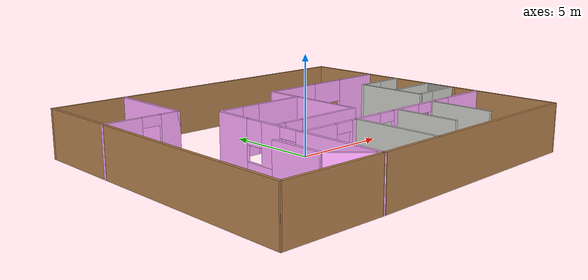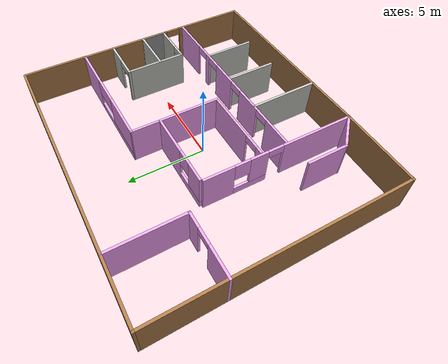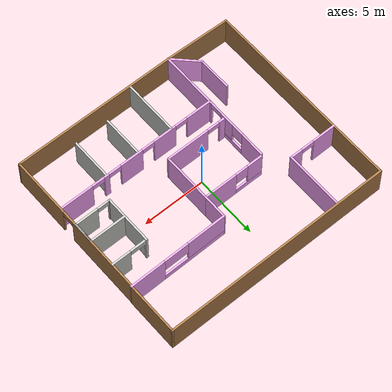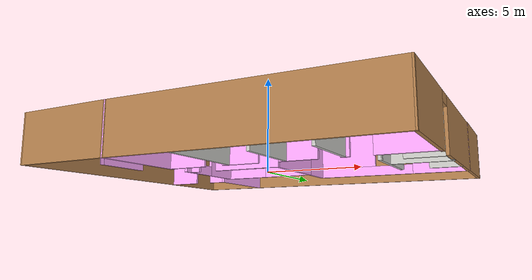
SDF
<?xml version='1.0'?>
<sdf version='1.6'>
  <model name='Building'>
    <pose frame=''>0.291404 0.084214 0 0 -0 0</pose>
    <link name='Wall_0'>
      <pose frame=''>-3.89491 -3.07088 0 0 0 -1.57824</pose>
      <visual name='Wall_0_Visual_0'>
        <pose frame=''>-3.9947 0 1.25 0 -0 0</pose>
        <geometry>
          <box>
            <size>1.99092 0.15 2.5</size>
          </box>
        </geometry>
        <material>
          <script>
            <uri>file://media/materials/scripts/gazebo.material</uri>
            <name>Gazebo/Grey</name>
          </script>
          <ambient>1 0.666667 1 1</ambient>
        </material>
        <meta>
          <layer>0</layer>
        </meta>
      </visual>
      <collision name='Wall_0_Collision_0'>
        <geometry>
          <box>
            <size>1.99092 0.15 2.5</size>
          </box>
        </geometry>
        <pose frame=''>-3.9947 0 1.25 0 -0 0</pose>
      </collision>
      <visual name='Wall_0_Visual_1'>
        <pose frame=''>2.58886 0 1.25 0 -0 0</pose>
        <geometry>
          <box>
            <size>4.80261 0.15 2.5</size>
          </box>
        </geometry>
        <material>
          <script>
            <uri>file://media/materials/scripts/gazebo.material</uri>
            <name>Gazebo/Grey</name>
          </script>
          <ambient>1 0.666667 1 1</ambient>
        </material>
        <meta>
          <layer>0</layer>
        </meta>
      </visual>
      <collision name='Wall_0_Collision_1'>
        <geometry>
          <box>
            <size>4.80261 0.15 2.5</size>
          </box>
        </geometry>
        <pose frame=''>2.58886 0 1.25 0 -0 0</pose>
      </collision>
      <visual name='Wall_0_Visual_2'>
        <pose frame=''>-1.90584 0 0.25 0 -0 0</pose>
        <geometry>
          <box>
            <size>2.18679 0.15 0.5</size>
          </box>
        </geometry>
        <material>
          <script>
            <uri>file://media/materials/scripts/gazebo.material</uri>
            <name>Gazebo/Grey</name>
          </script>
          <ambient>1 0.666667 1 1</ambient>
        </material>
        <meta>
          <layer>0</layer>
        </meta>
      </visual>
      <collision name='Wall_0_Collision_2'>
        <geometry>
          <box>
            <size>2.18679 0.15 0.5</size>
          </box>
        </geometry>
        <pose frame=''>-1.90584 0 0.25 0 -0 0</pose>
      </collision>
      <visual name='Wall_0_Visual_3'>
        <pose frame=''>-1.40584 0 1.5 0 -0 0</pose>
        <geometry>
          <box>
            <size>1.18679 0.15 2</size>
          </box>
        </geometry>
        <material>
          <script>
            <uri>file://media/materials/scripts/gazebo.material</uri>
            <name>Gazebo/Grey</name>
          </script>
          <ambient>1 0.666667 1 1</ambient>
        </material>
        <meta>
          <layer>0</layer>
        </meta>
      </visual>
      <collision name='Wall_0_Collision_3'>
        <geometry>
          <box>
            <size>1.18679 0.15 2</size>
          </box>
        </geometry>
        <pose frame=''>-1.40584 0 1.5 0 -0 0</pose>
      </collision>
      <visual name='Wall_0_Visual_4'>
        <pose frame=''>-2.49924 0 1.9 0 -0 0</pose>
        <geometry>
          <box>
            <size>1 0.15 1.2</size>
          </box>
        </geometry>
        <material>
          <script>
            <uri>file://media/materials/scripts/gazebo.material</uri>
            <name>Gazebo/Grey</name>
          </script>
          <ambient>1 0.666667 1 1</ambient>
        </material>
        <meta>
          <layer>0</layer>
        </meta>
      </visual>
      <collision name='Wall_0_Collision_4'>
        <geometry>
          <box>
            <size>1 0.15 1.2</size>
          </box>
        </geometry>
        <pose frame=''>-2.49924 0 1.9 0 -0 0</pose>
      </collision>
      <visual name='Wall_0_Visual_5'>
        <pose frame=''>-0.312448 0 2.25 0 -0 0</pose>
        <geometry>
          <box>
            <size>1 0.15 0.5</size>
          </box>
        </geometry>
        <material>
          <script>
            <uri>file://media/materials/scripts/gazebo.material</uri>
            <name>Gazebo/Grey</name>
          </script>
          <ambient>1 0.666667 1 1</ambient>
        </material>
        <meta>
          <layer>0</layer>
        </meta>
      </visual>
      <collision name='Wall_0_Collision_5'>
        <geometry>
          <box>
            <size>1 0.15 0.5</size>
          </box>
        </geometry>
        <pose frame=''>-0.312448 0 2.25 0 -0 0</pose>
      </collision>
    </link>
    <link name='Wall_1'>
      <collision name='Wall_1_Collision'>
        <geometry>
          <box>
            <size>13.0918 0.15 2.5</size>
          </box>
        </geometry>
        <pose frame=''>0 0 1.25 0 -0 0</pose>
      </collision>
      <visual name='Wall_1_Visual'>
        <pose frame=''>0 0 1.25 0 -0 0</pose>
        <geometry>
          <box>
            <size>13.0918 0.15 2.5</size>
          </box>
        </geometry>
        <material>
          <script>
            <uri>file://media/materials/scripts/gazebo.material</uri>
            <name>Gazebo/Wood</name>
          </script>
          <ambient>1 1 1 1</ambient>
        </material>
        <meta>
          <layer>0</layer>
        </meta>
      </visual>
      <pose frame=''>2.5394 -7.9859 0 0 -0 0</pose>
    </link>
    <link name='Wall_10'>
      <pose frame=''>2.57243 -3.52127 0 0 -0 0</pose>
      <visual name='Wall_10_Visual_0'>
        <pose frame=''>-5.45325 0 1.25 0 -0 0</pose>
        <geometry>
          <box>
            <size>2.0935 0.15 2.5</size>
          </box>
        </geometry>
        <material>
          <script>
            <uri>file://media/materials/scripts/gazebo.material</uri>
            <name>Gazebo/Grey</name>
          </script>
          <ambient>1 0.666667 1 1</ambient>
        </material>
        <meta>
          <layer>0</layer>
        </meta>
      </visual>
      <collision name='Wall_10_Collision_0'>
        <geometry>
          <box>
            <size>2.0935 0.15 2.5</size>
          </box>
        </geometry>
        <pose frame=''>-5.45325 0 1.25 0 -0 0</pose>
      </collision>
      <visual name='Wall_10_Visual_1'>
        <pose frame=''>-2.45836 0 1.25 0 -0 0</pose>
        <geometry>
          <box>
            <size>1.89627 0.15 2.5</size>
          </box>
        </geometry>
        <material>
          <script>
            <uri>file://media/materials/scripts/gazebo.material</uri>
            <name>Gazebo/Grey</name>
          </script>
          <ambient>1 0.666667 1 1</ambient>
        </material>
        <meta>
          <layer>0</layer>
        </meta>
      </visual>
      <collision name='Wall_10_Collision_1'>
        <geometry>
          <box>
            <size>1.89627 0.15 2.5</size>
          </box>
        </geometry>
        <pose frame=''>-2.45836 0 1.25 0 -0 0</pose>
      </collision>
      <visual name='Wall_10_Visual_2'>
        <pose frame=''>0.424691 0 1.25 0 -0 0</pose>
        <geometry>
          <box>
            <size>1.86983 0.15 2.5</size>
          </box>
        </geometry>
        <material>
          <script>
            <uri>file://media/materials/scripts/gazebo.material</uri>
            <name>Gazebo/Grey</name>
          </script>
          <ambient>1 0.666667 1 1</ambient>
        </material>
        <meta>
          <layer>0</layer>
        </meta>
      </visual>
      <collision name='Wall_10_Collision_2'>
        <geometry>
          <box>
            <size>1.86983 0.15 2.5</size>
          </box>
        </geometry>
        <pose frame=''>0.424691 0 1.25 0 -0 0</pose>
      </collision>
      <visual name='Wall_10_Visual_3'>
        <pose frame=''>2.56714 0 1.25 0 -0 0</pose>
        <geometry>
          <box>
            <size>0.415075 0.15 2.5</size>
          </box>
        </geometry>
        <material>
          <script>
            <uri>file://media/materials/scripts/gazebo.material</uri>
            <name>Gazebo/Grey</name>
          </script>
          <ambient>1 0.666667 1 1</ambient>
        </material>
        <meta>
          <layer>0</layer>
        </meta>
      </visual>
      <collision name='Wall_10_Collision_3'>
        <geometry>
          <box>
            <size>0.415075 0.15 2.5</size>
          </box>
        </geometry>
        <pose frame=''>2.56714 0 1.25 0 -0 0</pose>
      </collision>
      <visual name='Wall_10_Visual_4'>
        <pose frame=''>5.13734 0 1.25 0 -0 0</pose>
        <geometry>
          <box>
            <size>2.72532 0.15 2.5</size>
          </box>
        </geometry>
        <material>
          <script>
            <uri>file://media/materials/scripts/gazebo.material</uri>
            <name>Gazebo/Grey</name>
          </script>
          <ambient>1 0.666667 1 1</ambient>
        </material>
        <meta>
          <layer>0</layer>
        </meta>
      </visual>
      <collision name='Wall_10_Collision_4'>
        <geometry>
          <box>
            <size>2.72532 0.15 2.5</size>
          </box>
        </geometry>
        <pose frame=''>5.13734 0 1.25 0 -0 0</pose>
      </collision>
      <visual name='Wall_10_Visual_5'>
        <pose frame=''>-3.9065 0 2.25 0 -0 0</pose>
        <geometry>
          <box>
            <size>1 0.15 0.5</size>
          </box>
        </geometry>
        <material>
          <script>
            <uri>file://media/materials/scripts/gazebo.material</uri>
            <name>Gazebo/Grey</name>
          </script>
          <ambient>1 0.666667 1 1</ambient>
        </material>
        <meta>
          <layer>0</layer>
        </meta>
      </visual>
      <collision name='Wall_10_Collision_5'>
        <geometry>
          <box>
            <size>1 0.15 0.5</size>
          </box>
        </geometry>
        <pose frame=''>-3.9065 0 2.25 0 -0 0</pose>
      </collision>
      <visual name='Wall_10_Visual_6'>
        <pose frame=''>-1.01022 0 2.25 0 -0 0</pose>
        <geometry>
          <box>
            <size>1 0.15 0.5</size>
          </box>
        </geometry>
        <material>
          <script>
            <uri>file://media/materials/scripts/gazebo.material</uri>
            <name>Gazebo/Grey</name>
          </script>
          <ambient>1 0.666667 1 1</ambient>
        </material>
        <meta>
          <layer>0</layer>
        </meta>
      </visual>
      <collision name='Wall_10_Collision_6'>
        <geometry>
          <box>
            <size>1 0.15 0.5</size>
          </box>
        </geometry>
        <pose frame=''>-1.01022 0 2.25 0 -0 0</pose>
      </collision>
      <visual name='Wall_10_Visual_7'>
        <pose frame=''>1.8596 0 2.25 0 -0 0</pose>
        <geometry>
          <box>
            <size>1 0.15 0.5</size>
          </box>
        </geometry>
        <material>
          <script>
            <uri>file://media/materials/scripts/gazebo.material</uri>
            <name>Gazebo/Grey</name>
          </script>
          <ambient>1 0.666667 1 1</ambient>
        </material>
        <meta>
          <layer>0</layer>
        </meta>
      </visual>
      <collision name='Wall_10_Collision_7'>
        <geometry>
          <box>
            <size>1 0.15 0.5</size>
          </box>
        </geometry>
        <pose frame=''>1.8596 0 2.25 0 -0 0</pose>
      </collision>
      <visual name='Wall_10_Visual_8'>
        <pose frame=''>3.27468 0 2.25 0 -0 0</pose>
        <geometry>
          <box>
            <size>1 0.15 0.5</size>
          </box>
        </geometry>
        <material>
          <script>
            <uri>file://media/materials/scripts/gazebo.material</uri>
            <name>Gazebo/Grey</name>
          </script>
          <ambient>1 0.666667 1 1</ambient>
        </material>
        <meta>
          <layer>0</layer>
        </meta>
      </visual>
      <collision name='Wall_10_Collision_8'>
        <geometry>
          <box>
            <size>1 0.15 0.5</size>
          </box>
        </geometry>
        <pose frame=''>3.27468 0 2.25 0 -0 0</pose>
      </collision>
    </link>
    <link name='Wall_12'>
      <pose frame=''>7.56891 1.8886 0 0 -0 3.14159</pose>
      <visual name='Wall_12_Visual_0'>
        <pose frame=''>-0.720538 0 1.25 0 -0 0</pose>
        <geometry>
          <box>
            <size>1.55892 0.15 2.5</size>
          </box>
        </geometry>
        <material>
          <script>
            <uri>file://media/materials/scripts/gazebo.material</uri>
            <name>Gazebo/CeilingTiled</name>
          </script>
          <ambient>0.666667 0.666667 1 1</ambient>
        </material>
        <meta>
          <layer>0</layer>
        </meta>
      </visual>
      <collision name='Wall_12_Collision_0'>
        <geometry>
          <box>
            <size>1.55892 0.15 2.5</size>
          </box>
        </geometry>
        <pose frame=''>-0.720538 0 1.25 0 -0 0</pose>
      </collision>
      <visual name='Wall_12_Visual_1'>
        <pose frame=''>1.40446 0 1.25 0 -0 0</pose>
        <geometry>
          <box>
            <size>0.191076 0.15 2.5</size>
          </box>
        </geometry>
        <material>
          <script>
            <uri>file://media/materials/scripts/gazebo.material</uri>
            <name>Gazebo/CeilingTiled</name>
          </script>
          <ambient>0.666667 0.666667 1 1</ambient>
        </material>
        <meta>
          <layer>0</layer>
        </meta>
      </visual>
      <collision name='Wall_12_Collision_1'>
        <geometry>
          <box>
            <size>0.191076 0.15 2.5</size>
          </box>
        </geometry>
        <pose frame=''>1.40446 0 1.25 0 -0 0</pose>
      </collision>
      <visual name='Wall_12_Visual_2'>
        <pose frame=''>0.683924 0 2.25 0 -0 0</pose>
        <geometry>
          <box>
            <size>1.25 0.15 0.5</size>
          </box>
        </geometry>
        <material>
          <script>
            <uri>file://media/materials/scripts/gazebo.material</uri>
            <name>Gazebo/CeilingTiled</name>
          </script>
          <ambient>0.666667 0.666667 1 1</ambient>
        </material>
        <meta>
          <layer>0</layer>
        </meta>
      </visual>
      <collision name='Wall_12_Collision_2'>
        <geometry>
          <box>
            <size>1.25 0.15 0.5</size>
          </box>
        </geometry>
        <pose frame=''>0.683924 0 2.25 0 -0 0</pose>
      </collision>
    </link>
    <link name='Wall_15'>
      <collision name='Wall_15_Collision'>
        <geometry>
          <box>
            <size>4 0.15 2.5</size>
          </box>
        </geometry>
        <pose frame=''>0 0 1.25 0 -0 0</pose>
      </collision>
      <visual name='Wall_15_Visual'>
        <pose frame=''>0 0 1.25 0 -0 0</pose>
        <geometry>
          <box>
            <size>4 0.15 2.5</size>
          </box>
        </geometry>
        <material>
          <script>
            <uri>file://media/materials/scripts/gazebo.material</uri>
            <name>Gazebo/CeilingTiled</name>
          </script>
          <ambient>0.666667 0.666667 1 1</ambient>
        </material>
        <meta>
          <layer>0</layer>
        </meta>
      </visual>
      <pose frame=''>6.14391 -0.036403 0 0 0 -1.5708</pose>
    </link>
    <link name='Wall_16'>
      <pose frame=''>7.56891 -1.9614 0 0 -0 0</pose>
      <visual name='Wall_16_Visual_0'>
        <pose frame=''>-1.40292 0 1.25 0 -0 0</pose>
        <geometry>
          <box>
            <size>0.194152 0.15 2.5</size>
          </box>
        </geometry>
        <material>
          <script>
            <uri>file://media/materials/scripts/gazebo.material</uri>
            <name>Gazebo/CeilingTiled</name>
          </script>
          <ambient>0.666667 0.666667 1 1</ambient>
        </material>
        <meta>
          <layer>0</layer>
        </meta>
      </visual>
      <collision name='Wall_16_Collision_0'>
        <geometry>
          <box>
            <size>0.194152 0.15 2.5</size>
          </box>
        </geometry>
        <pose frame=''>-1.40292 0 1.25 0 -0 0</pose>
      </collision>
      <visual name='Wall_16_Visual_1'>
        <pose frame=''>0.547076 0 1.25 0 -0 0</pose>
        <geometry>
          <box>
            <size>1.90585 0.15 2.5</size>
          </box>
        </geometry>
        <material>
          <script>
            <uri>file://media/materials/scripts/gazebo.material</uri>
            <name>Gazebo/CeilingTiled</name>
          </script>
          <ambient>0.666667 0.666667 1 1</ambient>
        </material>
        <meta>
          <layer>0</layer>
        </meta>
      </visual>
      <collision name='Wall_16_Collision_1'>
        <geometry>
          <box>
            <size>1.90585 0.15 2.5</size>
          </box>
        </geometry>
        <pose frame=''>0.547076 0 1.25 0 -0 0</pose>
      </collision>
      <visual name='Wall_16_Visual_2'>
        <pose frame=''>-0.855848 0 2.25 0 -0 0</pose>
        <geometry>
          <box>
            <size>0.9 0.15 0.5</size>
          </box>
        </geometry>
        <material>
          <script>
            <uri>file://media/materials/scripts/gazebo.material</uri>
            <name>Gazebo/CeilingTiled</name>
          </script>
          <ambient>0.666667 0.666667 1 1</ambient>
        </material>
        <meta>
          <layer>0</layer>
        </meta>
      </visual>
      <collision name='Wall_16_Collision_2'>
        <geometry>
          <box>
            <size>0.9 0.15 0.5</size>
          </box>
        </geometry>
        <pose frame=''>-0.855848 0 2.25 0 -0 0</pose>
      </collision>
    </link>
    <link name='Wall_17'>
      <collision name='Wall_17_Collision'>
        <geometry>
          <box>
            <size>1.75 0.15 2.5</size>
          </box>
        </geometry>
        <pose frame=''>0 0 1.25 0 -0 0</pose>
      </collision>
      <visual name='Wall_17_Visual'>
        <pose frame=''>0 0 1.25 0 -0 0</pose>
        <geometry>
          <box>
            <size>1.75 0.15 2.5</size>
          </box>
        </geometry>
        <material>
          <script>
            <uri>file://media/materials/scripts/gazebo.material</uri>
            <name>Gazebo/Grey</name>
          </script>
          <ambient>1 1 1 1</ambient>
        </material>
        <meta>
          <layer>0</layer>
        </meta>
      </visual>
      <pose frame=''>8.99391 -1.1614 0 0 -0 1.5708</pose>
    </link>
    <link name='Wall_18'>
      <collision name='Wall_18_Collision'>
        <geometry>
          <box>
            <size>3 0.15 2.5</size>
          </box>
        </geometry>
        <pose frame=''>0 0 1.25 0 -0 0</pose>
      </collision>
      <visual name='Wall_18_Visual'>
        <pose frame=''>0 0 1.25 0 -0 0</pose>
        <geometry>
          <box>
            <size>3 0.15 2.5</size>
          </box>
        </geometry>
        <material>
          <script>
            <uri>file://media/materials/scripts/gazebo.material</uri>
            <name>Gazebo/CeilingTiled</name>
          </script>
          <ambient>0.666667 0.666667 1 1</ambient>
        </material>
        <meta>
          <layer>0</layer>
        </meta>
      </visual>
      <pose frame=''>7.56891 -0.361403 0 0 -0 3.14159</pose>
    </link>
    <link name='Wall_2'>
      <pose frame=''>9.01627 -2.06506 0 0 -0 1.56978</pose>
      <visual name='Wall_2_Visual_0'>
        <pose frame=''>-3.568 0 1.25 0 -0 0</pose>
        <geometry>
          <box>
            <size>4.85569 0.15 2.5</size>
          </box>
        </geometry>
        <material>
          <script>
            <uri>file://media/materials/scripts/gazebo.material</uri>
            <name>Gazebo/Wood</name>
          </script>
          <ambient>1 1 1 1</ambient>
        </material>
        <meta>
          <layer>0</layer>
        </meta>
      </visual>
      <collision name='Wall_2_Collision_0'>
        <geometry>
          <box>
            <size>4.85569 0.15 2.5</size>
          </box>
        </geometry>
        <pose frame=''>-3.568 0 1.25 0 -0 0</pose>
      </collision>
      <visual name='Wall_2_Visual_1'>
        <pose frame=''>2.92785 0 1.25 0 -0 0</pose>
        <geometry>
          <box>
            <size>6.136 0.15 2.5</size>
          </box>
        </geometry>
        <material>
          <script>
            <uri>file://media/materials/scripts/gazebo.material</uri>
            <name>Gazebo/Wood</name>
          </script>
          <ambient>1 1 1 1</ambient>
        </material>
        <meta>
          <layer>0</layer>
        </meta>
      </visual>
      <collision name='Wall_2_Collision_1'>
        <geometry>
          <box>
            <size>6.136 0.15 2.5</size>
          </box>
        </geometry>
        <pose frame=''>2.92785 0 1.25 0 -0 0</pose>
      </collision>
      <visual name='Wall_2_Visual_2'>
        <pose frame=''>-0.640156 0 2.25 0 -0 0</pose>
        <geometry>
          <box>
            <size>1 0.15 0.5</size>
          </box>
        </geometry>
        <material>
          <script>
            <uri>file://media/materials/scripts/gazebo.material</uri>
            <name>Gazebo/Wood</name>
          </script>
          <ambient>1 1 1 1</ambient>
        </material>
        <meta>
          <layer>0</layer>
        </meta>
      </visual>
      <collision name='Wall_2_Collision_2'>
        <geometry>
          <box>
            <size>1 0.15 0.5</size>
          </box>
        </geometry>
        <pose frame=''>-0.640156 0 2.25 0 -0 0</pose>
      </collision>
    </link>
    <link name='Wall_21'>
      <collision name='Wall_21_Collision'>
        <geometry>
          <box>
            <size>4.5 0.15 2.5</size>
          </box>
        </geometry>
        <pose frame=''>0 0 1.25 0 -0 0</pose>
      </collision>
      <visual name='Wall_21_Visual'>
        <pose frame=''>0 0 1.25 0 -0 0</pose>
        <geometry>
          <box>
            <size>4.5 0.15 2.5</size>
          </box>
        </geometry>
        <material>
          <script>
            <uri>file://media/materials/scripts/gazebo.material</uri>
            <name>Gazebo/CeilingTiled</name>
          </script>
          <ambient>1 0.666667 1 1</ambient>
        </material>
        <meta>
          <layer>0</layer>
        </meta>
      </visual>
      <pose frame=''>-0.507784 -5.74646 0 0 0 -1.5708</pose>
    </link>
    <link name='Wall_23'>
      <collision name='Wall_23_Collision'>
        <geometry>
          <box>
            <size>3.25 0.15 2.5</size>
          </box>
        </geometry>
        <pose frame=''>0 0 1.25 0 -0 0</pose>
      </collision>
      <visual name='Wall_23_Visual'>
        <pose frame=''>0 0 1.25 0 -0 0</pose>
        <geometry>
          <box>
            <size>3.25 0.15 2.5</size>
          </box>
        </geometry>
        <material>
          <script>
            <uri>file://media/materials/scripts/gazebo.material</uri>
            <name>Gazebo/CeilingTiled</name>
          </script>
          <ambient>1 0.666667 1 1</ambient>
        </material>
        <meta>
          <layer>0</layer>
        </meta>
      </visual>
      <pose frame=''>2.39271 -5.21989 0 0 0 -1.5708</pose>
    </link>
    <link name='Wall_25'>
      <collision name='Wall_25_Collision'>
        <geometry>
          <box>
            <size>3.25 0.15 2.5</size>
          </box>
        </geometry>
        <pose frame=''>0 0 1.25 0 -0 0</pose>
      </collision>
      <visual name='Wall_25_Visual'>
        <pose frame=''>0 0 1.25 0 -0 0</pose>
        <geometry>
          <box>
            <size>3.25 0.15 2.5</size>
          </box>
        </geometry>
        <material>
          <script>
            <uri>file://media/materials/scripts/gazebo.material</uri>
            <name>Gazebo/CeilingTiled</name>
          </script>
          <ambient>1 0.666667 1 1</ambient>
        </material>
        <meta>
          <layer>0</layer>
        </meta>
      </visual>
      <pose frame=''>5.11344 -5.21592 0 0 0 -1.5708</pose>
    </link>
    <link name='Wall_27'>
      <collision name='Wall_27_Collision'>
        <geometry>
          <box>
            <size>4.25 0.15 2.5</size>
          </box>
        </geometry>
        <pose frame=''>0 0 1.25 0 -0 0</pose>
      </collision>
      <visual name='Wall_27_Visual'>
        <pose frame=''>0 0 1.25 0 -0 0</pose>
        <geometry>
          <box>
            <size>4.25 0.15 2.5</size>
          </box>
        </geometry>
        <material>
          <script>
            <uri>file://media/materials/scripts/gazebo.material</uri>
            <name>Gazebo/Wood</name>
          </script>
          <ambient>1 1 1 1</ambient>
        </material>
        <meta>
          <layer>0</layer>
        </meta>
      </visual>
      <pose frame=''>9.05284 5.96697 0 0 -0 1.5708</pose>
    </link>
    <link name='Wall_28'>
      <collision name='Wall_28_Collision'>
        <geometry>
          <box>
            <size>18.25 0.15 2.5</size>
          </box>
        </geometry>
        <pose frame=''>0 0 1.25 0 -0 0</pose>
      </collision>
      <visual name='Wall_28_Visual'>
        <pose frame=''>0 0 1.25 0 -0 0</pose>
        <geometry>
          <box>
            <size>18.25 0.15 2.5</size>
          </box>
        </geometry>
        <material>
          <script>
            <uri>file://media/materials/scripts/gazebo.material</uri>
            <name>Gazebo/Wood</name>
          </script>
          <ambient>1 1 1 1</ambient>
        </material>
        <meta>
          <layer>0</layer>
        </meta>
      </visual>
      <pose frame=''>0.002842 8.01697 0 0 -0 3.14159</pose>
    </link>
    <link name='Wall_3'>
      <pose frame=''>5.09725 3.88056 0 0 0 -3.13239</pose>
      <visual name='Wall_3_Visual_0'>
        <pose frame=''>-2.60316 0 1.25 0 -0 0</pose>
        <geometry>
          <box>
            <size>2.85486 0.15 2.5</size>
          </box>
        </geometry>
        <material>
          <script>
            <uri>file://media/materials/scripts/gazebo.material</uri>
            <name>Gazebo/Grey</name>
          </script>
          <ambient>1 0.666667 1 1</ambient>
        </material>
        <meta>
          <layer>0</layer>
        </meta>
      </visual>
      <collision name='Wall_3_Collision_0'>
        <geometry>
          <box>
            <size>2.85486 0.15 2.5</size>
          </box>
        </geometry>
        <pose frame=''>-2.60316 0 1.25 0 -0 0</pose>
      </collision>
      <visual name='Wall_3_Visual_1'>
        <pose frame=''>1.42743 0 0.25 0 -0 0</pose>
        <geometry>
          <box>
            <size>5.20633 0.15 0.5</size>
          </box>
        </geometry>
        <material>
          <script>
            <uri>file://media/materials/scripts/gazebo.material</uri>
            <name>Gazebo/Grey</name>
          </script>
          <ambient>1 0.666667 1 1</ambient>
        </material>
        <meta>
          <layer>0</layer>
        </meta>
      </visual>
      <collision name='Wall_3_Collision_1'>
        <geometry>
          <box>
            <size>5.20633 0.15 0.5</size>
          </box>
        </geometry>
        <pose frame=''>1.42743 0 0.25 0 -0 0</pose>
      </collision>
      <visual name='Wall_3_Visual_2'>
        <pose frame=''>2.42743 0 1.5 0 -0 0</pose>
        <geometry>
          <box>
            <size>3.20633 0.15 2</size>
          </box>
        </geometry>
        <material>
          <script>
            <uri>file://media/materials/scripts/gazebo.material</uri>
            <name>Gazebo/Grey</name>
          </script>
          <ambient>1 0.666667 1 1</ambient>
        </material>
        <meta>
          <layer>0</layer>
        </meta>
      </visual>
      <collision name='Wall_3_Collision_2'>
        <geometry>
          <box>
            <size>3.20633 0.15 2</size>
          </box>
        </geometry>
        <pose frame=''>2.42743 0 1.5 0 -0 0</pose>
      </collision>
      <visual name='Wall_3_Visual_3'>
        <pose frame=''>-0.175731 0 1.9 0 -0 0</pose>
        <geometry>
          <box>
            <size>2 0.15 1.2</size>
          </box>
        </geometry>
        <material>
          <script>
            <uri>file://media/materials/scripts/gazebo.material</uri>
            <name>Gazebo/Grey</name>
          </script>
          <ambient>1 0.666667 1 1</ambient>
        </material>
        <meta>
          <layer>0</layer>
        </meta>
      </visual>
      <collision name='Wall_3_Collision_3'>
        <geometry>
          <box>
            <size>2 0.15 1.2</size>
          </box>
        </geometry>
        <pose frame=''>-0.175731 0 1.9 0 -0 0</pose>
      </collision>
    </link>
    <link name='Wall_32'>
      <collision name='Wall_32_Collision'>
        <geometry>
          <box>
            <size>16 0.15 2.5</size>
          </box>
        </geometry>
        <pose frame=''>0 0 1.25 0 -0 0</pose>
      </collision>
      <visual name='Wall_32_Visual'>
        <pose frame=''>0 0 1.25 0 -0 0</pose>
        <geometry>
          <box>
            <size>16 0.15 2.5</size>
          </box>
        </geometry>
        <material>
          <script>
            <uri>file://media/materials/scripts/gazebo.material</uri>
            <name>Gazebo/Wood</name>
          </script>
          <ambient>1 1 1 1</ambient>
        </material>
        <meta>
          <layer>0</layer>
        </meta>
      </visual>
      <pose frame=''>-9.04716 0.091965 0 0 0 -1.5708</pose>
    </link>
    <link name='Wall_33'>
      <collision name='Wall_33_Collision'>
        <geometry>
          <box>
            <size>5.26795 0.15 2.5</size>
          </box>
        </geometry>
        <pose frame=''>0 0 1.25 0 -0 0</pose>
      </collision>
      <visual name='Wall_33_Visual'>
        <pose frame=''>0 0 1.25 0 -0 0</pose>
        <geometry>
          <box>
            <size>5.26795 0.15 2.5</size>
          </box>
        </geometry>
        <material>
          <script>
            <uri>file://media/materials/scripts/gazebo.material</uri>
            <name>Gazebo/Wood</name>
          </script>
          <ambient>1 1 1 1</ambient>
        </material>
        <meta>
          <layer>0</layer>
        </meta>
      </visual>
      <pose frame=''>-6.48932 -7.90947 0 0 0 -0.029873</pose>
    </link>
    <link name='Wall_34'>
      <collision name='Wall_34_Collision'>
        <geometry>
          <box>
            <size>2.5 0.15 2.5</size>
          </box>
        </geometry>
        <pose frame=''>0 0 1.25 0 -0 0</pose>
      </collision>
      <visual name='Wall_34_Visual'>
        <pose frame=''>0 0 1.25 0 -0 0</pose>
        <geometry>
          <box>
            <size>2.5 0.15 2.5</size>
          </box>
        </geometry>
        <material>
          <script>
            <uri>file://media/materials/scripts/gazebo.material</uri>
            <name>Gazebo/Grey</name>
          </script>
          <ambient>1 0.666667 1 1</ambient>
        </material>
        <meta>
          <layer>0</layer>
        </meta>
      </visual>
      <pose frame=''>-4.76234 -7.15505 0 0 -0 2.35619</pose>
    </link>
    <link name='Wall_35'>
      <collision name='Wall_35_Collision'>
        <geometry>
          <box>
            <size>2.75 0.15 2.5</size>
          </box>
        </geometry>
        <pose frame=''>0 0 1.25 0 -0 0</pose>
      </collision>
      <visual name='Wall_35_Visual'>
        <pose frame=''>0 0 1.25 0 -0 0</pose>
        <geometry>
          <box>
            <size>2.75 0.15 2.5</size>
          </box>
        </geometry>
        <material>
          <script>
            <uri>file://media/materials/scripts/gazebo.material</uri>
            <name>Gazebo/Grey</name>
          </script>
          <ambient>1 0.666667 1 1</ambient>
        </material>
        <meta>
          <layer>0</layer>
        </meta>
      </visual>
      <pose frame=''>-5.59319 -5.0242 0 0 -0 1.5708</pose>
    </link>
    <link name='Wall_37'>
      <pose frame=''>-7.12837 3.3843 0 0 -0 0</pose>
      <visual name='Wall_37_Visual_0'>
        <pose frame=''>-1.01948 0 1.25 0 -0 0</pose>
        <geometry>
          <box>
            <size>1.96104 0.15 2.5</size>
          </box>
        </geometry>
        <material>
          <script>
            <uri>file://media/materials/scripts/gazebo.material</uri>
            <name>Gazebo/Grey</name>
          </script>
          <ambient>1 0.666667 1 1</ambient>
        </material>
        <meta>
          <layer>0</layer>
        </meta>
      </visual>
      <collision name='Wall_37_Collision_0'>
        <geometry>
          <box>
            <size>1.96104 0.15 2.5</size>
          </box>
        </geometry>
        <pose frame=''>-1.01948 0 1.25 0 -0 0</pose>
      </collision>
      <visual name='Wall_37_Visual_1'>
        <pose frame=''>1.48052 0 1.25 0 -0 0</pose>
        <geometry>
          <box>
            <size>1.03896 0.15 2.5</size>
          </box>
        </geometry>
        <material>
          <script>
            <uri>file://media/materials/scripts/gazebo.material</uri>
            <name>Gazebo/Grey</name>
          </script>
          <ambient>1 0.666667 1 1</ambient>
        </material>
        <meta>
          <layer>0</layer>
        </meta>
      </visual>
      <collision name='Wall_37_Collision_1'>
        <geometry>
          <box>
            <size>1.03896 0.15 2.5</size>
          </box>
        </geometry>
        <pose frame=''>1.48052 0 1.25 0 -0 0</pose>
      </collision>
      <visual name='Wall_37_Visual_2'>
        <pose frame=''>0.461038 0 2.25 0 -0 0</pose>
        <geometry>
          <box>
            <size>1 0.15 0.5</size>
          </box>
        </geometry>
        <material>
          <script>
            <uri>file://media/materials/scripts/gazebo.material</uri>
            <name>Gazebo/Grey</name>
          </script>
          <ambient>1 0.666667 1 1</ambient>
        </material>
        <meta>
          <layer>0</layer>
        </meta>
      </visual>
      <collision name='Wall_37_Collision_2'>
        <geometry>
          <box>
            <size>1 0.15 0.5</size>
          </box>
        </geometry>
        <pose frame=''>0.461038 0 2.25 0 -0 0</pose>
      </collision>
    </link>
    <link name='Wall_38'>
      <collision name='Wall_38_Collision'>
        <geometry>
          <box>
            <size>4.75 0.15 2.5</size>
          </box>
        </geometry>
        <pose frame=''>0 0 1.25 0 -0 0</pose>
      </collision>
      <visual name='Wall_38_Visual'>
        <pose frame=''>0 0 1.25 0 -0 0</pose>
        <geometry>
          <box>
            <size>4.75 0.15 2.5</size>
          </box>
        </geometry>
        <material>
          <script>
            <uri>file://media/materials/scripts/gazebo.material</uri>
            <name>Gazebo/Grey</name>
          </script>
          <ambient>1 0.666667 1 1</ambient>
        </material>
        <meta>
          <layer>0</layer>
        </meta>
      </visual>
      <pose frame=''>-5.20337 5.6843 0 0 -0 1.5708</pose>
    </link>
    <link name='Wall_4'>
      <collision name='Wall_4_Collision'>
        <geometry>
          <box>
            <size>2 0.15 2.5</size>
          </box>
        </geometry>
        <pose frame=''>0 0 1.25 0 -0 0</pose>
      </collision>
      <visual name='Wall_4_Visual'>
        <pose frame=''>0 0 1.25 0 -0 0</pose>
        <geometry>
          <box>
            <size>2 0.15 2.5</size>
          </box>
        </geometry>
        <material>
          <script>
            <uri>file://media/materials/scripts/gazebo.material</uri>
            <name>Gazebo/Grey</name>
          </script>
          <ambient>1 0.666667 1 1</ambient>
        </material>
        <meta>
          <layer>0</layer>
        </meta>
      </visual>
      <pose frame=''>1.14166 2.91915 0 0 0 -1.5708</pose>
    </link>
    <link name='Wall_5'>
      <pose frame=''>-1.28334 1.99415 0 0 -0 3.14159</pose>
      <visual name='Wall_5_Visual_0'>
        <pose frame=''>-1.1425 0 1.25 0 -0 0</pose>
        <geometry>
          <box>
            <size>2.715 0.15 2.5</size>
          </box>
        </geometry>
        <material>
          <script>
            <uri>file://media/materials/scripts/gazebo.material</uri>
            <name>Gazebo/Grey</name>
          </script>
          <ambient>1 0.666667 1 1</ambient>
        </material>
        <meta>
          <layer>0</layer>
        </meta>
      </visual>
      <collision name='Wall_5_Collision_0'>
        <geometry>
          <box>
            <size>2.715 0.15 2.5</size>
          </box>
        </geometry>
        <pose frame=''>-1.1425 0 1.25 0 -0 0</pose>
      </collision>
      <visual name='Wall_5_Visual_1'>
        <pose frame=''>1.3575 0 0.25 0 -0 0</pose>
        <geometry>
          <box>
            <size>2.285 0.15 0.5</size>
          </box>
        </geometry>
        <material>
          <script>
            <uri>file://media/materials/scripts/gazebo.material</uri>
            <name>Gazebo/Grey</name>
          </script>
          <ambient>1 0.666667 1 1</ambient>
        </material>
        <meta>
          <layer>0</layer>
        </meta>
      </visual>
      <collision name='Wall_5_Collision_1'>
        <geometry>
          <box>
            <size>2.285 0.15 0.5</size>
          </box>
        </geometry>
        <pose frame=''>1.3575 0 0.25 0 -0 0</pose>
      </collision>
      <visual name='Wall_5_Visual_2'>
        <pose frame=''>1.8575 0 1.5 0 -0 0</pose>
        <geometry>
          <box>
            <size>1.285 0.15 2</size>
          </box>
        </geometry>
        <material>
          <script>
            <uri>file://media/materials/scripts/gazebo.material</uri>
            <name>Gazebo/Grey</name>
          </script>
          <ambient>1 0.666667 1 1</ambient>
        </material>
        <meta>
          <layer>0</layer>
        </meta>
      </visual>
      <collision name='Wall_5_Collision_2'>
        <geometry>
          <box>
            <size>1.285 0.15 2</size>
          </box>
        </geometry>
        <pose frame=''>1.8575 0 1.5 0 -0 0</pose>
      </collision>
      <visual name='Wall_5_Visual_3'>
        <pose frame=''>0.715001 0 1.9 0 -0 0</pose>
        <geometry>
          <box>
            <size>1 0.15 1.2</size>
          </box>
        </geometry>
        <material>
          <script>
            <uri>file://media/materials/scripts/gazebo.material</uri>
            <name>Gazebo/Grey</name>
          </script>
          <ambient>1 0.666667 1 1</ambient>
        </material>
        <meta>
          <layer>0</layer>
        </meta>
      </visual>
      <collision name='Wall_5_Collision_3'>
        <geometry>
          <box>
            <size>1 0.15 1.2</size>
          </box>
        </geometry>
        <pose frame=''>0.715001 0 1.9 0 -0 0</pose>
      </collision>
    </link>
    <link name='Wall_7'>
      <collision name='Wall_7_Collision'>
        <geometry>
          <box>
            <size>4 0.15 2.5</size>
          </box>
        </geometry>
        <pose frame=''>0 0 1.25 0 -0 0</pose>
      </collision>
      <visual name='Wall_7_Visual'>
        <pose frame=''>0 0 1.25 0 -0 0</pose>
        <geometry>
          <box>
            <size>4 0.15 2.5</size>
          </box>
        </geometry>
        <material>
          <script>
            <uri>file://media/materials/scripts/gazebo.material</uri>
            <name>Gazebo/Grey</name>
          </script>
          <ambient>1 0.666667 1 1</ambient>
        </material>
        <meta>
          <layer>0</layer>
        </meta>
      </visual>
      <pose frame=''>1.14166 0.069149 0 0 0 -1.5708</pose>
    </link>
    <link name='Wall_8'>
      <pose frame=''>-1.28334 -1.85585 0 0 -0 3.14159</pose>
      <visual name='Wall_8_Visual_0'>
        <pose frame=''>-0.743815 0 1.25 0 -0 0</pose>
        <geometry>
          <box>
            <size>3.51237 0.15 2.5</size>
          </box>
        </geometry>
        <material>
          <script>
            <uri>file://media/materials/scripts/gazebo.material</uri>
            <name>Gazebo/Grey</name>
          </script>
          <ambient>1 0.666667 1 1</ambient>
        </material>
        <meta>
          <layer>0</layer>
        </meta>
      </visual>
      <collision name='Wall_8_Collision_0'>
        <geometry>
          <box>
            <size>3.51237 0.15 2.5</size>
          </box>
        </geometry>
        <pose frame=''>-0.743815 0 1.25 0 -0 0</pose>
      </collision>
      <visual name='Wall_8_Visual_1'>
        <pose frame=''>2.25618 0 1.25 0 -0 0</pose>
        <geometry>
          <box>
            <size>0.48763 0.15 2.5</size>
          </box>
        </geometry>
        <material>
          <script>
            <uri>file://media/materials/scripts/gazebo.material</uri>
            <name>Gazebo/Grey</name>
          </script>
          <ambient>1 0.666667 1 1</ambient>
        </material>
        <meta>
          <layer>0</layer>
        </meta>
      </visual>
      <collision name='Wall_8_Collision_1'>
        <geometry>
          <box>
            <size>0.48763 0.15 2.5</size>
          </box>
        </geometry>
        <pose frame=''>2.25618 0 1.25 0 -0 0</pose>
      </collision>
      <visual name='Wall_8_Visual_2'>
        <pose frame=''>1.51237 0 2.25 0 -0 0</pose>
        <geometry>
          <box>
            <size>1 0.15 0.5</size>
          </box>
        </geometry>
        <material>
          <script>
            <uri>file://media/materials/scripts/gazebo.material</uri>
            <name>Gazebo/Grey</name>
          </script>
          <ambient>1 0.666667 1 1</ambient>
        </material>
        <meta>
          <layer>0</layer>
        </meta>
      </visual>
      <collision name='Wall_8_Collision_2'>
        <geometry>
          <box>
            <size>1 0.15 0.5</size>
          </box>
        </geometry>
        <pose frame=''>1.51237 0 2.25 0 -0 0</pose>
      </collision>
    </link>
    <static>1</static>
  </model>
</sdf>
